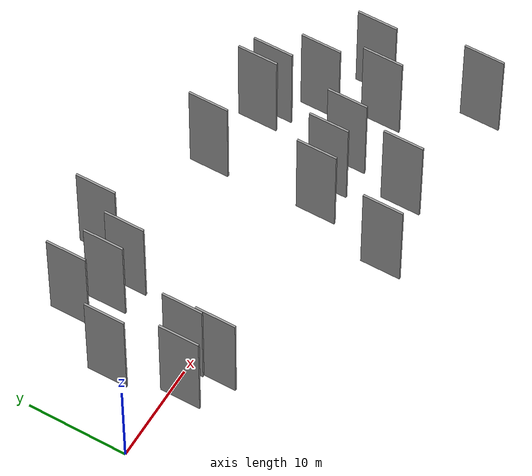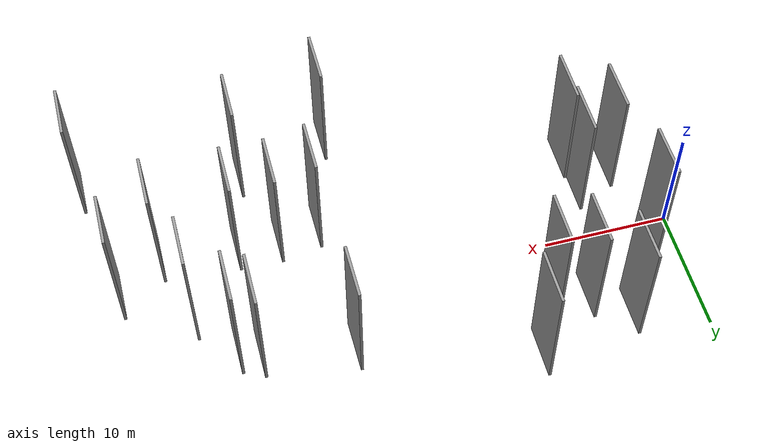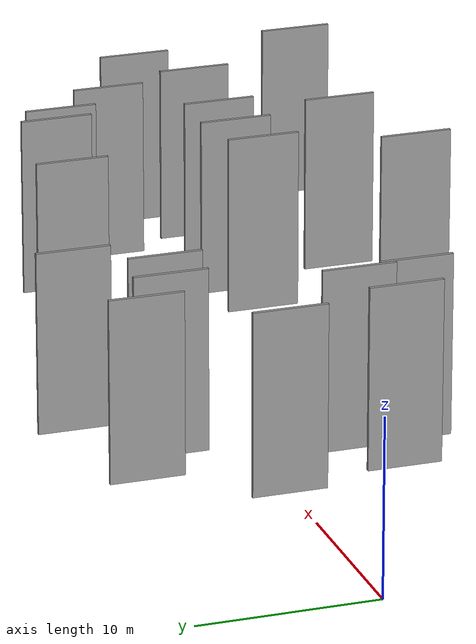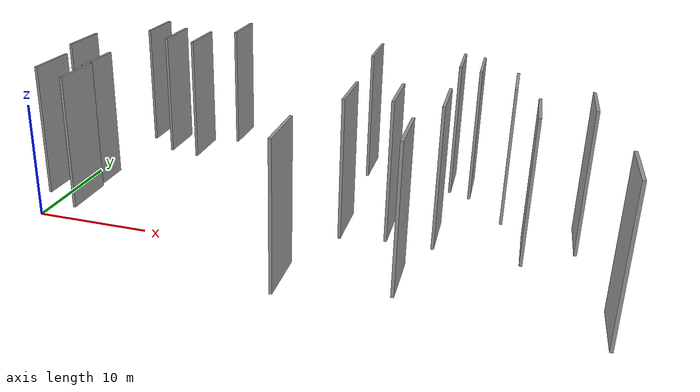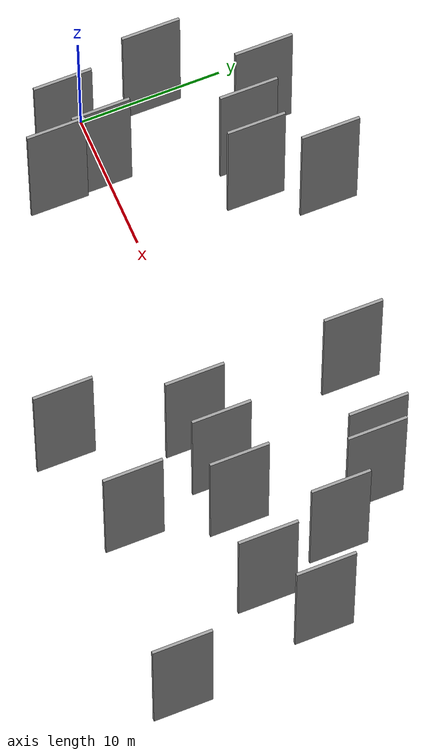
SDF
<sdf version="1.6">
 <world name="default">
  <scene>
   <sky><clouds><speed>12</speed></clouds></sky>
   <ambient>0.4 0.4 0.4 1</ambient>
   <background>0.7 0.7 0.7 1</background>
   <shadows>1</shadows>
  </scene>
  <gravity>0 0 -9.8066</gravity>
  <magnetic_field>6e-06 2.3e-05 -4.2e-05</magnetic_field>
  <physics default="0" name="default_physics" type="ode">
   <ode>
    <solver>
     <type>quick</type>
     <iters>10</iters>
     <sor>1.0</sor>
     <use_dynamic_moi_rescaling>0</use_dynamic_moi_rescaling>
    </solver>
    <constraints>
     <cfm>0</cfm>
     <erp>0.2</erp>
     <contact_max_correcting_vel>100</contact_max_correcting_vel>
     <contact_surface_layer>0.001</contact_surface_layer>
    </constraints>
   </ode>
   <max_step_size>0.004</max_step_size>
   <real_time_factor>1</real_time_factor>
   <real_time_update_rate>250</real_time_update_rate>
  </physics>
  <light name="sun" type="directional">
   <pose>0 0 10 0 0 0</pose>
   <diffuse>0.8 0.8 0.8 1</diffuse>
   <specular>0.2 0.2 0.2 1</specular>
   <attenuation>
    <range>1000</range>
    <constant>0.9</constant>
    <linear>0.01</linear>
    <quadratic>0.001</quadratic>
   </attenuation>
   <direction>-0.5 0.1 -0.9</direction>
  </light>
  <model name="grey_wall_1">
   <static>1</static>
   <pose>27.7852 -3.1588 5.0 0.000000 0.000000 1.570796</pose>
   <link name="link">
    <pose>0 0 5.00 0 0 0</pose>
    <collision name="collision"><geometry><box><size>4.00 0.2 10.00</size></box></geometry></collision>
    <visual name="visual">
     <cast_shadows>0</cast_shadows>
     <geometry><box><size>4.00 0.2 10.00</size></box></geometry>
     <material>
      <script>
       <uri>model://grey_wall/materials/scripts</uri>
       <uri>model://grey_wall/materials/textures</uri>
       <name>vrc/grey_wall</name>
      </script>
     </material>
    </visual>
   </link>
  </model>
  <model name="grey_wall_2">
   <static>1</static>
   <pose>14.6795 11.6521 5.0 0.000000 0.000000 1.570796</pose>
   <link name="link">
    <pose>0 0 5.00 0 0 0</pose>
    <collision name="collision"><geometry><box><size>4.00 0.2 10.00</size></box></geometry></collision>
    <visual name="visual">
     <cast_shadows>0</cast_shadows>
     <geometry><box><size>4.00 0.2 10.00</size></box></geometry>
     <material>
      <script>
       <uri>model://grey_wall/materials/scripts</uri>
       <uri>model://grey_wall/materials/textures</uri>
       <name>vrc/grey_wall</name>
      </script>
     </material>
    </visual>
   </link>
  </model>
  <model name="grey_wall_3">
   <static>1</static>
   <pose>30.8606 -2.6154 5.0 0.000000 0.000000 1.570796</pose>
   <link name="link">
    <pose>0 0 5.00 0 0 0</pose>
    <collision name="collision"><geometry><box><size>4.00 0.2 10.00</size></box></geometry></collision>
    <visual name="visual">
     <cast_shadows>0</cast_shadows>
     <geometry><box><size>4.00 0.2 10.00</size></box></geometry>
     <material>
      <script>
       <uri>model://grey_wall/materials/scripts</uri>
       <uri>model://grey_wall/materials/textures</uri>
       <name>vrc/grey_wall</name>
      </script>
     </material>
    </visual>
   </link>
  </model>
  <model name="grey_wall_4">
   <static>1</static>
   <pose>7.9824 -4.5990 5.0 0.000000 0.000000 1.570796</pose>
   <link name="link">
    <pose>0 0 5.00 0 0 0</pose>
    <collision name="collision"><geometry><box><size>4.00 0.2 10.00</size></box></geometry></collision>
    <visual name="visual">
     <cast_shadows>0</cast_shadows>
     <geometry><box><size>4.00 0.2 10.00</size></box></geometry>
     <material>
      <script>
       <uri>model://grey_wall/materials/scripts</uri>
       <uri>model://grey_wall/materials/textures</uri>
       <name>vrc/grey_wall</name>
      </script>
     </material>
    </visual>
   </link>
  </model>
  <model name="grey_wall_5">
   <static>1</static>
   <pose>4.7802 -2.8742 5.0 0.000000 0.000000 1.570796</pose>
   <link name="link">
    <pose>0 0 5.00 0 0 0</pose>
    <collision name="collision"><geometry><box><size>4.00 0.2 10.00</size></box></geometry></collision>
    <visual name="visual">
     <cast_shadows>0</cast_shadows>
     <geometry><box><size>4.00 0.2 10.00</size></box></geometry>
     <material>
      <script>
       <uri>model://grey_wall/materials/scripts</uri>
       <uri>model://grey_wall/materials/textures</uri>
       <name>vrc/grey_wall</name>
      </script>
     </material>
    </visual>
   </link>
  </model>
  <model name="grey_wall_6">
   <static>1</static>
   <pose>34.1191 6.6470 5.0 0.000000 0.000000 1.570796</pose>
   <link name="link">
    <pose>0 0 5.00 0 0 0</pose>
    <collision name="collision"><geometry><box><size>4.00 0.2 10.00</size></box></geometry></collision>
    <visual name="visual">
     <cast_shadows>0</cast_shadows>
     <geometry><box><size>4.00 0.2 10.00</size></box></geometry>
     <material>
      <script>
       <uri>model://grey_wall/materials/scripts</uri>
       <uri>model://grey_wall/materials/textures</uri>
       <name>vrc/grey_wall</name>
      </script>
     </material>
    </visual>
   </link>
  </model>
  <model name="grey_wall_7">
   <static>1</static>
   <pose>7.3207 10.0780 5.0 0.000000 0.000000 1.570796</pose>
   <link name="link">
    <pose>0 0 5.00 0 0 0</pose>
    <collision name="collision"><geometry><box><size>4.00 0.2 10.00</size></box></geometry></collision>
    <visual name="visual">
     <cast_shadows>0</cast_shadows>
     <geometry><box><size>4.00 0.2 10.00</size></box></geometry>
     <material>
      <script>
       <uri>model://grey_wall/materials/scripts</uri>
       <uri>model://grey_wall/materials/textures</uri>
       <name>vrc/grey_wall</name>
      </script>
     </material>
    </visual>
   </link>
  </model>
  <model name="grey_wall_8">
   <static>1</static>
   <pose>32.5476 -9.2525 5.0 0.000000 0.000000 1.570796</pose>
   <link name="link">
    <pose>0 0 5.00 0 0 0</pose>
    <collision name="collision"><geometry><box><size>4.00 0.2 10.00</size></box></geometry></collision>
    <visual name="visual">
     <cast_shadows>0</cast_shadows>
     <geometry><box><size>4.00 0.2 10.00</size></box></geometry>
     <material>
      <script>
       <uri>model://grey_wall/materials/scripts</uri>
       <uri>model://grey_wall/materials/textures</uri>
       <name>vrc/grey_wall</name>
      </script>
     </material>
    </visual>
   </link>
  </model>
  <model name="grey_wall_9">
   <static>1</static>
   <pose>35.6301 5.9257 5.0 0.000000 0.000000 1.570796</pose>
   <link name="link">
    <pose>0 0 5.00 0 0 0</pose>
    <collision name="collision"><geometry><box><size>4.00 0.2 10.00</size></box></geometry></collision>
    <visual name="visual">
     <cast_shadows>0</cast_shadows>
     <geometry><box><size>4.00 0.2 10.00</size></box></geometry>
     <material>
      <script>
       <uri>model://grey_wall/materials/scripts</uri>
       <uri>model://grey_wall/materials/textures</uri>
       <name>vrc/grey_wall</name>
      </script>
     </material>
    </visual>
   </link>
  </model>
  <model name="grey_wall_10">
   <static>1</static>
   <pose>38.1619 2.3968 5.0 0.000000 0.000000 1.570796</pose>
   <link name="link">
    <pose>0 0 5.00 0 0 0</pose>
    <collision name="collision"><geometry><box><size>4.00 0.2 10.00</size></box></geometry></collision>
    <visual name="visual">
     <cast_shadows>0</cast_shadows>
     <geometry><box><size>4.00 0.2 10.00</size></box></geometry>
     <material>
      <script>
       <uri>model://grey_wall/materials/scripts</uri>
       <uri>model://grey_wall/materials/textures</uri>
       <name>vrc/grey_wall</name>
      </script>
     </material>
    </visual>
   </link>
  </model>
  <model name="grey_wall_11">
   <static>1</static>
   <pose>27.4184 7.7928 5.0 0.000000 0.000000 1.570796</pose>
   <link name="link">
    <pose>0 0 5.00 0 0 0</pose>
    <collision name="collision"><geometry><box><size>4.00 0.2 10.00</size></box></geometry></collision>
    <visual name="visual">
     <cast_shadows>0</cast_shadows>
     <geometry><box><size>4.00 0.2 10.00</size></box></geometry>
     <material>
      <script>
       <uri>model://grey_wall/materials/scripts</uri>
       <uri>model://grey_wall/materials/textures</uri>
       <name>vrc/grey_wall</name>
      </script>
     </material>
    </visual>
   </link>
  </model>
  <model name="grey_wall_12">
   <static>1</static>
   <pose>44.5303 -10.8492 5.0 0.000000 0.000000 1.570796</pose>
   <link name="link">
    <pose>0 0 5.00 0 0 0</pose>
    <collision name="collision"><geometry><box><size>4.00 0.2 10.00</size></box></geometry></collision>
    <visual name="visual">
     <cast_shadows>0</cast_shadows>
     <geometry><box><size>4.00 0.2 10.00</size></box></geometry>
     <material>
      <script>
       <uri>model://grey_wall/materials/scripts</uri>
       <uri>model://grey_wall/materials/textures</uri>
       <name>vrc/grey_wall</name>
      </script>
     </material>
    </visual>
   </link>
  </model>
  <model name="grey_wall_13">
   <static>1</static>
   <pose>9.9602 7.9345 5.0 0.000000 0.000000 1.570796</pose>
   <link name="link">
    <pose>0 0 5.00 0 0 0</pose>
    <collision name="collision"><geometry><box><size>4.00 0.2 10.00</size></box></geometry></collision>
    <visual name="visual">
     <cast_shadows>0</cast_shadows>
     <geometry><box><size>4.00 0.2 10.00</size></box></geometry>
     <material>
      <script>
       <uri>model://grey_wall/materials/scripts</uri>
       <uri>model://grey_wall/materials/textures</uri>
       <name>vrc/grey_wall</name>
      </script>
     </material>
    </visual>
   </link>
  </model>
  <model name="grey_wall_14">
   <static>1</static>
   <pose>3.4495 3.7831 5.0 0.000000 0.000000 1.570796</pose>
   <link name="link">
    <pose>0 0 5.00 0 0 0</pose>
    <collision name="collision"><geometry><box><size>4.00 0.2 10.00</size></box></geometry></collision>
    <visual name="visual">
     <cast_shadows>0</cast_shadows>
     <geometry><box><size>4.00 0.2 10.00</size></box></geometry>
     <material>
      <script>
       <uri>model://grey_wall/materials/scripts</uri>
       <uri>model://grey_wall/materials/textures</uri>
       <name>vrc/grey_wall</name>
      </script>
     </material>
    </visual>
   </link>
  </model>
  <model name="grey_wall_15">
   <static>1</static>
   <pose>39.6820 -3.1317 5.0 0.000000 0.000000 1.570796</pose>
   <link name="link">
    <pose>0 0 5.00 0 0 0</pose>
    <collision name="collision"><geometry><box><size>4.00 0.2 10.00</size></box></geometry></collision>
    <visual name="visual">
     <cast_shadows>0</cast_shadows>
     <geometry><box><size>4.00 0.2 10.00</size></box></geometry>
     <material>
      <script>
       <uri>model://grey_wall/materials/scripts</uri>
       <uri>model://grey_wall/materials/textures</uri>
       <name>vrc/grey_wall</name>
      </script>
     </material>
    </visual>
   </link>
  </model>
  <model name="grey_wall_16">
   <static>1</static>
   <pose>34.0347 -2.7101 5.0 0.000000 0.000000 1.570796</pose>
   <link name="link">
    <pose>0 0 5.00 0 0 0</pose>
    <collision name="collision"><geometry><box><size>4.00 0.2 10.00</size></box></geometry></collision>
    <visual name="visual">
     <cast_shadows>0</cast_shadows>
     <geometry><box><size>4.00 0.2 10.00</size></box></geometry>
     <material>
      <script>
       <uri>model://grey_wall/materials/scripts</uri>
       <uri>model://grey_wall/materials/textures</uri>
       <name>vrc/grey_wall</name>
      </script>
     </material>
    </visual>
   </link>
  </model>
  <model name="grey_wall_17">
   <static>1</static>
   <pose>43.0325 -0.6693 5.0 0.000000 0.000000 1.570796</pose>
   <link name="link">
    <pose>0 0 5.00 0 0 0</pose>
    <collision name="collision"><geometry><box><size>4.00 0.2 10.00</size></box></geometry></collision>
    <visual name="visual">
     <cast_shadows>0</cast_shadows>
     <geometry><box><size>4.00 0.2 10.00</size></box></geometry>
     <material>
      <script>
       <uri>model://grey_wall/materials/scripts</uri>
       <uri>model://grey_wall/materials/textures</uri>
       <name>vrc/grey_wall</name>
      </script>
     </material>
    </visual>
   </link>
  </model>
  <model name="grey_wall_18">
   <static>1</static>
   <pose>25.5531 -11.1485 5.0 0.000000 0.000000 1.570796</pose>
   <link name="link">
    <pose>0 0 5.00 0 0 0</pose>
    <collision name="collision"><geometry><box><size>4.00 0.2 10.00</size></box></geometry></collision>
    <visual name="visual">
     <cast_shadows>0</cast_shadows>
     <geometry><box><size>4.00 0.2 10.00</size></box></geometry>
     <material>
      <script>
       <uri>model://grey_wall/materials/scripts</uri>
       <uri>model://grey_wall/materials/textures</uri>
       <name>vrc/grey_wall</name>
      </script>
     </material>
    </visual>
   </link>
  </model>
  <model name="grey_wall_19">
   <static>1</static>
   <pose>12.5340 7.3959 5.0 0.000000 0.000000 1.570796</pose>
   <link name="link">
    <pose>0 0 5.00 0 0 0</pose>
    <collision name="collision"><geometry><box><size>4.00 0.2 10.00</size></box></geometry></collision>
    <visual name="visual">
     <cast_shadows>0</cast_shadows>
     <geometry><box><size>4.00 0.2 10.00</size></box></geometry>
     <material>
      <script>
       <uri>model://grey_wall/materials/scripts</uri>
       <uri>model://grey_wall/materials/textures</uri>
       <name>vrc/grey_wall</name>
      </script>
     </material>
    </visual>
   </link>
  </model>
  <model name="grey_wall_20">
   <static>1</static>
   <pose>7.7598 -1.4241 5.0 0.000000 0.000000 1.570796</pose>
   <link name="link">
    <pose>0 0 5.00 0 0 0</pose>
    <collision name="collision"><geometry><box><size>4.00 0.2 10.00</size></box></geometry></collision>
    <visual name="visual">
     <cast_shadows>0</cast_shadows>
     <geometry><box><size>4.00 0.2 10.00</size></box></geometry>
     <material>
      <script>
       <uri>model://grey_wall/materials/scripts</uri>
       <uri>model://grey_wall/materials/textures</uri>
       <name>vrc/grey_wall</name>
      </script>
     </material>
    </visual>
   </link>
  </model>
 </world>
</sdf>
